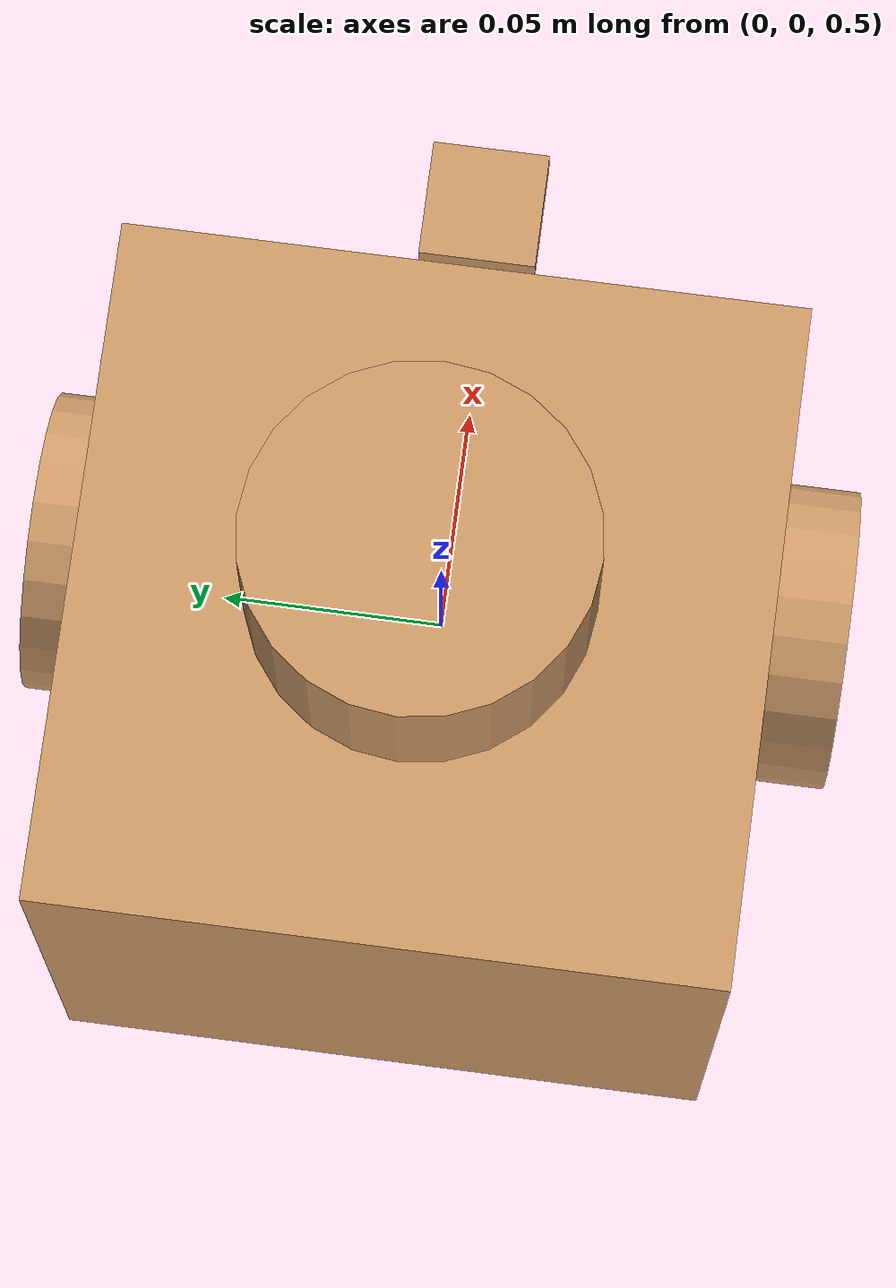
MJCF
<?xml version='1.0' encoding='utf-8'?>
<mujoco model="turtlebot3_burger">
  <compiler angle="radian" meshdir="D:\ROS2_PROJECT\robotstudio\examples\turtlebot3_burger\meshes" autolimits="true" />
  <option timestep="0.001" gravity="0 0 -9.81" />
  <default>
    <geom rgba="0.8 0.6 0.4 1" friction="1 0.5 0.5" />
  </default>
  <asset>
    <material name="light_black" rgba="0.3 0.3 0.3 1.0" />
    <material name="dark" rgba="0.1 0.1 0.1 1.0" />
    <material name="red" rgba="0.8 0.2 0.2 1.0" />
    <material name="dark_blue" rgba="0.1 0.1 0.4 1.0" />
    <material name="green" rgba="0.2 0.8 0.2 1.0" />
  </asset>
  <worldbody>
    <light diffuse="0.5 0.5 0.5" pos="0 0 3" dir="0 0 -1" />
    <geom name="floor" type="plane" size="0 0 1" rgba="0.9 0.9 0.9 1" />
    <body name="base_footprint" pos="0 0 0.5">
      <freejoint name="base_footprint_freejoint" />
      <body name="base_link" pos="0.0 0.0 0.010">
        <inertial mass="1.0" pos="0 0 0" fullinertia="0.001 0.001 0.001 0.0 0.0 0.0" />
        <geom name="base_link_visual" type="box" group="0" pos="-0.032 0 0.07" size="0.07 0.07 0.0715" material="light_black" />
        <geom name="base_link_collision" type="box" group="3" rgba="0.5 0.5 0.5 0.3" pos="-0.032 0 0.07" size="0.07 0.07 0.0715" />
        <body name="wheel_left_link" pos="0.0 0.08 0.023">
          <joint name="wheel_left_joint" type="hinge" axis="0 1 0" />
          <inertial mass="0.1" pos="0 0 0" fullinertia="0.000001 0.000001 0.000001 0.0 0.0 0.0" />
          <geom name="wheel_left_link_visual" type="cylinder" group="0" pos="0 0 0" quat="0.7073882691671998 0.706825181105366 0.0 0.0" size="0.033 0.009" material="dark" />
          <geom name="wheel_left_link_collision" type="cylinder" group="3" rgba="0.5 0.5 0.5 0.3" pos="0 0 0" quat="0.7073882691671998 0.706825181105366 0.0 0.0" size="0.033 0.009" />
        </body>
        <body name="wheel_right_link" pos="0.0 -0.08 0.023">
          <joint name="wheel_right_joint" type="hinge" axis="0 1 0" />
          <inertial mass="0.1" pos="0 0 0" fullinertia="0.000001 0.000001 0.000001 0.0 0.0 0.0" />
          <geom name="wheel_right_link_visual" type="cylinder" group="0" pos="0 0 0" quat="0.7073882691671998 0.706825181105366 0.0 0.0" size="0.033 0.009" material="dark" />
          <geom name="wheel_right_link_collision" type="cylinder" group="3" rgba="0.5 0.5 0.5 0.3" pos="0 0 0" quat="0.7073882691671998 0.706825181105366 0.0 0.0" size="0.033 0.009" />
        </body>
        <body name="caster_back_link" pos="-0.081 0 -0.004">
          <inertial mass="0.01" pos="0 0 0" fullinertia="0.000001 0.000001 0.000001 0.0 0.0 0.0" />
          <geom name="caster_back_link_visual" type="sphere" group="0" pos="0 0 0" size="0.005" material="dark" />
          <geom name="caster_back_link_collision" type="sphere" group="3" rgba="0.5 0.5 0.5 0.3" pos="0 0 0" size="0.005" />
        </body>
        <body name="imu_link" pos="-0.032 0 0.068">
          <inertial mass="0.001" pos="0 0 0" fullinertia="0.000001 0.000001 0.000001 0.0 0.0 0.0" />
          <geom name="imu_link_visual" type="box" group="0" pos="0 0 0" size="0.0075 0.0075 0.0025" material="red" />
        </body>
        <body name="base_scan" pos="-0.032 0 0.171">
          <inertial mass="0.125" pos="0 0 0" fullinertia="0.00001 0.00001 0.00001 0.0 0.0 0.0" />
          <geom name="base_scan_visual" type="cylinder" group="0" pos="0 0 0" size="0.035 0.02" material="dark_blue" />
          <geom name="base_scan_collision" type="cylinder" group="3" rgba="0.5 0.5 0.5 0.3" pos="0 0 0" size="0.035 0.02" />
        </body>
        <body name="camera_link" pos="0.070 0 0.080">
          <inertial mass="0.005" pos="0 0 0" fullinertia="0.000001 0.000001 0.000001 0.0 0.0 0.0" />
          <geom name="camera_link_visual" type="box" group="0" pos="0 0 0" size="0.0125 0.0125 0.005" material="green" />
          <body name="camera_optical_link" pos="0 0 0" quat="0.5003981633553667 -0.49999984146591736 0.49960183664463337 -0.49999984146591736" />
        </body>
      </body>
    </body>
  </worldbody>
  <actuator>
    <position name="wheel_left_joint_motor" joint="wheel_left_joint" kp="10" />
    <position name="wheel_right_joint_motor" joint="wheel_right_joint" kp="10" />
  </actuator>
  <sensor>
    <jointpos name="wheel_left_joint_pos" joint="wheel_left_joint" />
    <jointvel name="wheel_left_joint_vel" joint="wheel_left_joint" />
    <jointpos name="wheel_right_joint_pos" joint="wheel_right_joint" />
    <jointvel name="wheel_right_joint_vel" joint="wheel_right_joint" />
  </sensor>
</mujoco>
